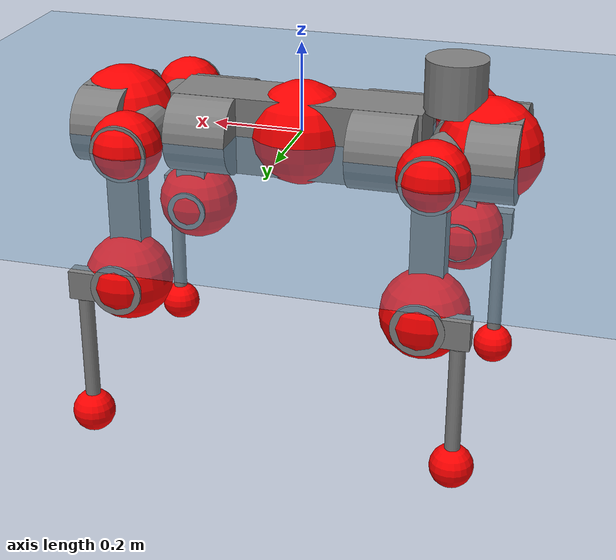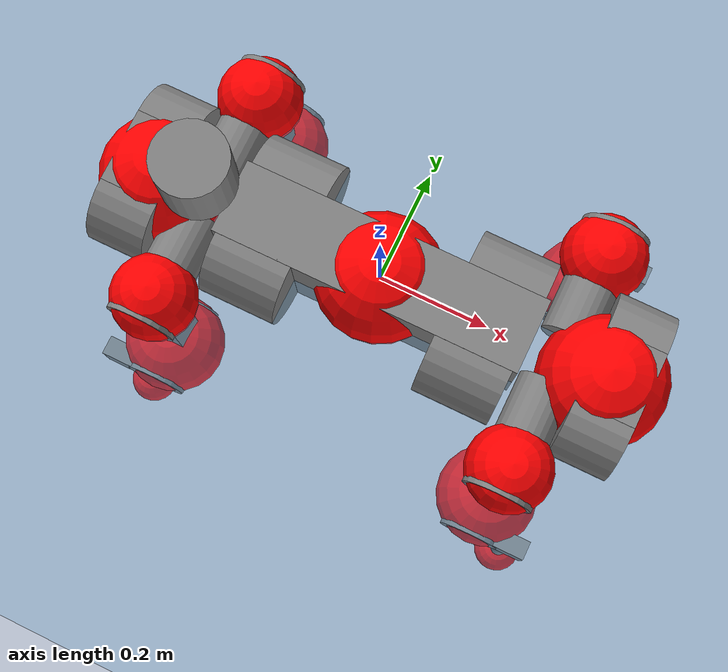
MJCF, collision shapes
<mujoco model="anymal_c">
  <compiler angle="radian" assetdir="assets" balanceinertia="true" inertiafromgeom="false"/>

  <option timestep="0.005" density="1.2" viscosity="2e-05"/>

  <size nkey="1"/>

  <visual>
    <quality shadowsize="8192"/>
    <map shadowclip="0.5"/>
  </visual>

  <default>
    <default class="/">
      <material specular="0" shininess="0.25"/>
      <geom contype="0" conaffinity="0" group="1" solref="-1000 -80"/>
      <site size="0.01 0.005 0.005" group="5"/>
      <general forcelimited="true" forcerange="-80 80" biastype="affine" gainprm="80" biasprm="0 -80 -2"/>
      <default class="anymal_c">
        <joint armature="0.01" damping="0.01" frictionloss="0.1"/>
        <default class="visual">
          <geom type="mesh" group="2"/>
          <default class="visual_zflip"/>
        </default>
        <default class="collision">
          <geom type="cylinder" group="3"/>
          <default class="foot">
            <geom size="0.03 0 0" type="sphere" condim="6" priority="1" friction="0.8 0.02 0.01" solimp="0.015 1 0.03"/>
          </default>
        </default>
      </default>
      <default class="reward_collision_sphere">
        <geom group="5" rgba="1 0 0 1"/>
      </default>
    </default>
  </default>

  <asset>
    <texture type="skybox" colorspace="auto" name="//unnamed_texture_0" builtin="gradient" rgb1="0.95 0.95 0.95" rgb2="0.95 0.95 0.95" width="100" height="600"/>
    <texture type="2d" colorspace="auto" name="texplane" builtin="checker" rgb1="0.345 0.575 0.748" rgb2="0.345 0.575 0.748" markrgb="1 1 1" width="512" height="512"/>
    <texture type="2d" colorspace="linear" name="base" file="base.png"/>
    <texture type="2d" colorspace="linear" name="top_shell" file="top_shell.png"/>
    <texture type="2d" colorspace="linear" name="bottom_shell" file="bottom_shell.png"/>
    <texture type="2d" colorspace="linear" name="remote" file="remote.png"/>
    <texture type="2d" colorspace="linear" name="hatch" file="hatch.png"/>
    <texture type="2d" colorspace="linear" name="handle" file="handle.png"/>
    <texture type="2d" colorspace="linear" name="face" file="face.png"/>
    <texture type="2d" colorspace="linear" name="battery" file="battery.png"/>
    <texture type="2d" colorspace="linear" name="lidar_cage" file="lidar_cage.png"/>
    <texture type="2d" colorspace="linear" name="depth_camera" file="depth_camera.png"/>
    <texture type="2d" colorspace="linear" name="wide_angle_camera" file="wide_angle_camera.png"/>
    <texture type="2d" colorspace="linear" name="lidar" file="lidar.png"/>
    <texture type="2d" colorspace="linear" name="drive" file="drive.png"/>
    <texture type="2d" colorspace="linear" name="hip_l" file="hip_l.png"/>
    <texture type="2d" colorspace="linear" name="shank_l" file="shank_l.png"/>
    <texture type="2d" colorspace="linear" name="foot" file="foot.png"/>
    <texture type="2d" colorspace="linear" name="thigh" file="thigh.png"/>
    <texture type="2d" colorspace="linear" name="shank_r" file="shank_r.png"/>
    <texture type="2d" colorspace="linear" name="hip_r" file="hip_r.png"/>
    <material name="MatPlane" class="/" texture="texplane" texuniform="true" texrepeat="2 2" specular="0.9" shininess="0.5"/>
    <material name="black_plastic" class="/" rgba="0.007 0.007 0.007 1"/>
    <material name="green" class="/" rgba="0.052 0.178 0.033 1"/>
    <material name="red" class="/" rgba="0.178 0.006 0.005 1"/>
    <material name="yellow" class="/" rgba="0.178 0.119 0.006 1"/>
    <material name="lwl" class="/" rgba="0.8 0.8 0.8 1"/>
    <material name="base" class="/" texture="base"/>
    <material name="top_shell" class="/" texture="top_shell"/>
    <material name="bottom_shell" class="/" texture="bottom_shell"/>
    <material name="hip_l" class="/" texture="hip_l"/>
    <material name="thigh" class="/" texture="thigh"/>
    <material name="shank_l" class="/" texture="shank_l"/>
    <material name="foot" class="/" texture="foot"/>
    <material name="hip_r" class="/" texture="hip_r"/>
    <material name="shank" class="/" texture="shank_r"/>
    <material name="hatch" class="/" texture="hatch"/>
    <material name="remote" class="/" texture="remote"/>
    <material name="handle" class="/" texture="handle"/>
    <material name="face" class="/" texture="face"/>
    <material name="depth_camera" class="/" texture="depth_camera"/>
    <material name="wide_angle_camera" class="/" texture="wide_angle_camera"/>
    <material name="battery" class="/" texture="battery"/>
    <material name="lidar_cage" class="/" texture="lidar_cage"/>
    <material name="lidar" class="/" texture="lidar"/>
    <material name="drive" class="/" texture="drive"/>
    <mesh name="base_0" class="/" file="base_0.obj"/>
    <mesh name="base_1" class="/" file="base_1.obj"/>
    <mesh name="base_2" class="/" file="base_2.obj"/>
    <mesh name="base_3" class="/" file="base_3.obj"/>
    <mesh name="base_4" class="/" file="base_4.obj"/>
    <mesh name="base_5" class="/" file="base_5.obj"/>
    <mesh name="top_shell" class="/" file="top_shell.obj"/>
    <mesh name="bottom_shell" class="/" file="bottom_shell.obj"/>
    <mesh name="remote" class="/" file="remote.obj"/>
    <mesh name="handle" class="/" file="handle.obj"/>
    <mesh name="face" class="/" file="face.obj"/>
    <mesh name="wide_angle_camera" class="/" file="wide_angle_camera.obj"/>
    <mesh name="depth_camera" class="/" file="depth_camera.obj"/>
    <mesh name="battery" class="/" file="battery.obj"/>
    <mesh name="lidar_cage" class="/" file="lidar_cage.obj"/>
    <mesh name="lidar" class="/" file="lidar.obj"/>
    <mesh name="drive" class="/" file="drive.obj"/>
    <mesh name="hip_l" class="/" file="hip_l.obj"/>
    <mesh name="thigh" class="/" file="thigh.obj"/>
    <mesh name="shank_l" class="/" file="shank_l.obj"/>
    <mesh name="foot" class="/" file="foot.obj"/>
    <mesh name="hip_r" class="/" file="hip_r.obj"/>
    <mesh name="hatch" class="/" file="hatch.obj"/>
    <mesh name="shank_r" class="/" file="shank_r.obj"/>
  </asset>

  <worldbody>
    <geom name="floor" class="/" size="100 100 0.125" type="plane" group="0" material="MatPlane"/>
    <light name="toplight_shadow" class="/" pos="0 0 5" dir="0.0990148 0.0990148 -0.990148" type="directional" ambient="0.04 0.04 0.04" diffuse="0.55 0.55 0.55" specular="0.12 0.12 0.12"/>
    <light name="toplight_fill" class="/" pos="0 0 5" dir="0.0990148 0.0990148 -0.990148" type="directional" castshadow="false" ambient="0.04 0.04 0.04" diffuse="0.3 0.3 0.3" specular="0.08 0.08 0.08"/>
    <body name="trunk" childclass="anymal_c" pos="-0.000141753 -2.45456e-05 -0.00182503" quat="1 8.64198e-05 0.000237054 -6.87063e-05">
      <inertial pos="0.00254991 0.00264987 0.0521981" quat="0.500153 0.500055 0.500061 0.49973" mass="16.4669" diaginertia="0.425551 0.42014 0.244438"/>
      <joint name="//unnamed_joint_0" type="free" armature="0" damping="0" frictionloss="0"/>
      <geom name="//unnamed_geom_1" class="visual" material="green" mesh="base_0"/>
      <geom name="//unnamed_geom_2" class="visual" material="yellow" mesh="base_1"/>
      <geom name="//unnamed_geom_3" class="visual" material="red" mesh="base_2"/>
      <geom name="//unnamed_geom_4" class="visual" material="black_plastic" mesh="base_3"/>
      <geom name="//unnamed_geom_5" class="visual" material="lwl" mesh="base_4"/>
      <geom name="//unnamed_geom_6" class="visual" material="base" mesh="base_5"/>
      <geom name="trunk_1" class="collision" size="0.277487 0.0669795 0.0861165" type="box"/>
      <geom name="trunk_2" class="collision" size="0.0861165 0.0693716" pos="0.199612 0.0647798 0" quat="0.707107 0 0.707107 0"/>
      <geom name="trunk_3" class="collision" size="0.0861165 0.0693716" pos="-0.199612 0.0647798 0" quat="0.707107 0 0.707107 0"/>
      <geom name="trunk_4" class="collision" size="0.0861165 0.0693716" pos="0.199612 -0.0647798 0" quat="0.707107 0 0.707107 0"/>
      <geom name="trunk_5" class="collision" size="0.0861165 0.0693716" pos="-0.199612 -0.0647798 0" quat="0.707107 0 0.707107 0"/>
      <geom name="//unnamed_geom_12" class="visual" material="top_shell" mesh="top_shell"/>
      <geom name="//unnamed_geom_13" class="visual" material="bottom_shell" mesh="bottom_shell"/>
      <geom name="//unnamed_geom_14" class="visual" material="remote" mesh="remote"/>
      <geom name="//unnamed_geom_15" class="visual" material="handle" mesh="handle"/>
      <geom name="//unnamed_geom_16" class="visual" pos="0.380409 0 0" quat="1 0 0 0" material="face" mesh="face"/>
      <geom name="trunk_6" class="collision" size="0.0526268 0.0669795 0.0861165" pos="0.430886 0 0" type="box"/>
      <geom name="//unnamed_geom_18" class="collision" size="0.0861165 0.0526268" pos="0.430886 0.0647798 0" quat="0.707107 0 0.707107 0"/>
      <geom name="//unnamed_geom_19" class="collision" size="0.0861165 0.0526268" pos="0.430886 -0.0647798 0" quat="0.707107 0 0.707107 0"/>
      <geom name="//unnamed_geom_20" class="visual" pos="0.423686 0 -0.0308323" quat="0.965926 0 0.258819 0" material="depth_camera" mesh="depth_camera"/>
      <geom name="//unnamed_geom_21" class="visual" pos="0.470808 0 0.0153797" material="wide_angle_camera" mesh="wide_angle_camera"/>
      <geom name="//unnamed_geom_22" class="visual_zflip" pos="-0.380409 0 0" quat="0 0 0 1" material="face" mesh="face"/>
      <geom name="trunk_7" class="collision" size="0.0526268 0.0669795 0.0861165" pos="-0.430886 0 0" quat="0 0 0 1" type="box"/>
      <geom name="//unnamed_geom_24" class="collision" size="0.0861165 0.0526268" pos="-0.430886 -0.0647798 0" quat="0 -0.707107 0 0.707107"/>
      <geom name="//unnamed_geom_25" class="collision" size="0.0861165 0.0526268" pos="-0.430886 0.0647798 0" quat="0 -0.707107 0 0.707107"/>
      <geom name="//unnamed_geom_26" class="visual" pos="-0.423686 0 -0.0308323" quat="0 -0.258819 0 0.965926" material="depth_camera" mesh="depth_camera"/>
      <geom name="//unnamed_geom_27" class="visual_zflip" pos="-0.470808 0 0.0153797" quat="0 0 0 1" material="wide_angle_camera" mesh="wide_angle_camera"/>
      <geom name="//unnamed_geom_28" class="visual" material="battery" mesh="battery"/>
      <geom name="//unnamed_geom_29" class="visual" pos="0 0.0708633 0.029012" quat="0.683013 -0.183013 0.183013 0.683013" material="depth_camera" mesh="depth_camera"/>
      <geom name="//unnamed_geom_30" class="visual" pos="0 -0.0708633 0.029012" quat="0.683013 0.183013 0.183013 -0.683013" material="depth_camera" mesh="depth_camera"/>
      <geom name="//unnamed_geom_31" class="visual" pos="-0.334063 0 0.0755117" quat="1 0 0 0" material="lidar_cage" mesh="lidar_cage"/>
      <geom name="trunk_8" class="collision" size="0.0669795 0.057411" pos="-0.334063 0 0.137154"/>
      <geom name="//unnamed_geom_33" class="visual" pos="-0.334063 3.0139e-06 0.146092" quat="0.707107 0 0 -0.707107" material="lidar" mesh="lidar"/>
      <geom name="//unnamed_geom_34" class="visual" pos="0.275235 0.0962805 -1.75853e-09" quat="0.258819 0.965926 0 0" material="drive" mesh="drive"/>
      <geom name="//unnamed_geom_35" class="visual" pos="0.275235 -0.0962805 1.75853e-09" quat="0.258819 -0.965926 0 0" material="drive" mesh="drive"/>
      <geom name="//unnamed_geom_36" class="visual" pos="-0.275235 0.0962805 1.75853e-09" quat="0 0 0.965926 -0.258819" material="drive" mesh="drive"/>
      <geom name="//unnamed_geom_37" class="visual" pos="-0.275235 -0.0962805 -1.75853e-09" quat="0 0 -0.965926 -0.258819" material="drive" mesh="drive"/>
      <geom name="//unnamed_geom_38" class="visual" pos="0.10646 0 0.074998" quat="1 0 0 0" material="hatch" mesh="hatch"/>
      <geom name="//unnamed_geom_39" class="reward_collision_sphere" size="0.114822"/>
      <geom name="//unnamed_geom_40" class="reward_collision_sphere" size="0.114822" pos="0.41299 0 0"/>
      <geom name="//unnamed_geom_41" class="reward_collision_sphere" size="0.114822" pos="-0.41299 0 0"/>
      <site name="imu" pos="0.224813 0.00400843 0.0449119" size="0.0095685"/>
      <camera name="track" pos="0 -1.85085 0" quat="0.707107 0.707107 0 0" mode="trackcom"/>
      <camera name="ego_camera" pos="0.41299 0 -0.0410948" quat="-0.5 -0.5 0.5 0.5"/>
      <body name="LF_HIP" pos="0.275405 0.0958413 -0.000406012" quat="0.258562 0.965995 -0.000130071 0.00047083">
        <inertial pos="0.0495441 -0.0142606 -0.0088793" quat="-0.128885 0.707695 -0.135245 0.68137" mass="2.49778" diaginertia="0.00386259 0.00335286 0.00385456"/>
        <joint name="LF_HAA" pos="0 0 0" axis="1 -0.000539376 0.000823921" range="-0.71621 0.492643" armature="0.0101555" damping="0.0134428" frictionloss="0.0840301"/>
        <geom name="//unnamed_geom_42" class="visual" pos="0 -0.000103447 1.6991e-05" quat="0.258819 -0.965926 0 0" material="hip_l" mesh="hip_l"/>
        <geom name="//unnamed_geom_43" class="visual" pos="0.0549735 -0.0667493 -0.0392918" quat="0.183013 -0.683013 0.683013 0.183013" material="drive" mesh="drive"/>
        <geom name="//unnamed_geom_44" class="collision" size="0.0478425 0.0669795" pos="0.0549735 -0.0110679 -0.00709399" quat="-0.353553 -0.612372 0.612372 -0.353553"/>
        <body name="LF_THIGH" pos="0.055219 -0.0668215 -0.0429187" quat="0.18307 -0.683005 0.683022 0.18295">
          <inertial pos="0.0280786 0.000363486 -0.253036" quat="0.993293 -0.00268502 -0.0793907 0.0840154" mass="2.56698" diaginertia="0.0196907 0.0201656 0.00447643"/>
          <joint name="LF_HFE" pos="0 0 0" axis="1 -0.000429742 -0.000279743" range="-3.17547 3.13589" armature="0.00918407" damping="0.00873183" frictionloss="0.0955296"/>
          <geom name="//unnamed_geom_45" class="visual" pos="-0.000152632 -2.40512e-07 0" quat="0.707107 0 0 -0.707107" material="thigh" mesh="thigh"/>
          <geom name="//unnamed_geom_46" class="collision" size="0.0621953 0.038274" pos="0.0367102 0 0" quat="0.5 0.5 -0.5 -0.5"/>
          <geom name="//unnamed_geom_47" class="collision" size="0.0358819 0.0287055 0.135216" pos="0.0275326 0 -0.145182" quat="0.707107 0 0 -0.707107" type="box"/>
          <geom name="//unnamed_geom_48" class="visual" pos="0.0920508 0 -0.2928" quat="1 0 0 0" material="drive" mesh="drive"/>
          <geom name="//unnamed_geom_49" class="collision" size="0.0478425 0.0669795" pos="0.027808 0 -0.2928" quat="0.707107 0 0.707107 0"/>
          <geom name="//unnamed_geom_50" class="reward_collision_sphere" size="0.076548" pos="0.0229439 0 0"/>
          <body name="LF_SHANK" pos="0.0925615 0.0010865 -0.29136" quat="0.999999 -0.000900314 0.00101339 0.000349172">
            <inertial pos="0.00462548 -0.0566112 -0.0827867" quat="0.992953 -0.115617 -0.000604256 -0.0260212" mass="0.506182" diaginertia="0.00662119 0.00612358 0.00125433"/>
            <joint name="LF_KFE" pos="0 0 0" axis="0.999986 -0.00162504 -0.00505981" range="-3.14809 3.1566" armature="0.0096669" damping="0.0215118" frictionloss="0.0868618"/>
            <geom name="//unnamed_geom_51" class="visual" pos="-4.97698e-05 -0.000265375 0" quat="0.707107 0 0 -0.707107" material="shank_l" mesh="shank_l"/>
            <geom name="LF_kfe_act" class="collision" size="0.057411 0.019137" pos="0.0183551 0 0" quat="0.5 0.5 -0.5 -0.5"/>
            <geom name="//unnamed_geom_53" class="collision" size="0.0550179 0.0322937 0.0181802" pos="0.0183551 -0.0532111 0" quat="0.5 0.5 -0.5 -0.5" type="box"/>
            <geom name="//unnamed_geom_54" class="visual" pos="0.0119767 -0.0814768 -0.34722" quat="0.382683 0 0 -0.92388" material="foot" mesh="foot"/>
            <geom name="LF_calf" class="collision" size="0.0167449 0.135157" pos="0.0119767 -0.0813912 -0.17361" quat="0.707107 0 0 -0.707107"/>
            <geom name="LF_foot" class="foot" size="0.0312623" pos="0.0119767 -0.0813912 -0.324104" quat="0.707107 0 0 -0.707107"/>
            <geom name="//unnamed_geom_57" class="reward_collision_sphere" size="0.095685" pos="-0.0458877 0 0"/>
            <geom name="//unnamed_geom_58" class="reward_collision_sphere" size="0.0478425" pos="0.0119767 -0.0813912 -0.324104"/>
            <site name="LF_foot" class="foot" pos="0.0119767 -0.0813912 -0.324104" quat="0.707107 0 0 -0.707107" size="0.0095685"/>
          </body>
        </body>
      </body>
      <body name="RF_HIP" pos="0.275254 -0.0977215 0.00105984" quat="0.257826 -0.966191 0.00033105 2.81994e-05">
        <inertial pos="0.0524474 0.0137275 -0.00770747" quat="0.135922 0.679974 0.128103 0.709048" mass="2.32837" diaginertia="0.0036728 0.00321548 0.00376241"/>
        <joint name="RF_HAA" pos="0 0 0" axis="0.999998 -0.000127178 -0.00197703" range="-0.450545 0.66843" armature="0.00948397" damping="0.00435114" frictionloss="0.0891305"/>
        <geom name="//unnamed_geom_59" class="visual" pos="0 0.000103446 1.6991e-05" quat="0.258819 0.965926 0 0" material="hip_r" mesh="hip_r"/>
        <geom name="//unnamed_geom_60" class="visual" pos="0.0549735 0.0667493 -0.0392918" quat="0.183013 0.683013 0.683013 -0.183013" material="drive" mesh="drive"/>
        <geom name="//unnamed_geom_61" class="collision" size="0.0478425 0.0669795" pos="0.0549735 0.0110679 -0.00709399" quat="-0.353553 0.612372 0.612372 0.353553"/>
        <body name="RF_THIGH" pos="0.0579027 0.0678735 -0.0427544" quat="0.182804 0.683017 0.683033 -0.183129">
          <inertial pos="0.0288552 0.000516357 -0.252268" quat="0.992899 -0.00540027 -0.0809056 0.0870387" mass="2.76653" diaginertia="0.0196666 0.0209931 0.0048883"/>
          <joint name="RF_HFE" pos="0 0 0" axis="0.999919 -0.0126896 0.000394435" stiffness="0.00675543" range="-3.08979 3.0854" armature="0.00975167" damping="0" frictionloss="0.100812"/>
          <geom name="//unnamed_geom_62" class="visual" pos="-0.000152632 -2.40512e-07 0" quat="0.707107 0 0 -0.707107" material="thigh" mesh="thigh"/>
          <geom name="//unnamed_geom_63" class="collision" size="0.0621953 0.038274" pos="0.0367102 0 0" quat="0.5 0.5 0.5 0.5"/>
          <geom name="//unnamed_geom_64" class="collision" size="0.0358819 0.0287055 0.135216" pos="0.0275326 0 -0.145182" quat="0.707107 0 0 0.707107" type="box"/>
          <geom name="//unnamed_geom_65" class="visual" pos="0.0920508 0 -0.2928" quat="1 0 0 0" material="drive" mesh="drive"/>
          <geom name="//unnamed_geom_66" class="collision" size="0.0478425 0.0669795" pos="0.027808 0 -0.2928" quat="0.707107 0 0.707107 0"/>
          <geom name="//unnamed_geom_67" class="reward_collision_sphere" size="0.076548" pos="0.0229439 0 0"/>
          <body name="RF_SHANK" pos="0.0946604 -0.00120628 -0.29215" quat="1 -1.83459e-05 0.000296148 0.000380807">
            <inertial pos="0.00580782 0.0577788 -0.0800267" quat="0.992719 0.117209 -0.0053794 0.0272611" mass="0.496798" diaginertia="0.00667522 0.00620875 0.00126883"/>
            <joint name="RF_KFE" pos="0 0 0" axis="0.999911 -0.00474502 0.012466" range="-3.15313 3.08787" armature="0.00960214" damping="0.00592004" frictionloss="0.0830965"/>
            <geom name="//unnamed_geom_68" class="visual" pos="-4.97696e-05 0.000265375 0" quat="0.707107 0 0 0.707107" material="shank" mesh="shank_r"/>
            <geom name="RF_kfe_act" class="collision" size="0.057411 0.019137" pos="0.0183551 0 0" quat="0.5 0.5 0.5 0.5"/>
            <geom name="//unnamed_geom_70" class="collision" size="0.0550179 0.0322937 0.0181802" pos="0.0183551 0.0532111 0" quat="0.5 0.5 0.5 0.5" type="box"/>
            <geom name="//unnamed_geom_71" class="visual" pos="0.0119767 0.0814768 -0.34722" quat="0.382683 0 0 0.92388" material="foot" mesh="foot"/>
            <geom name="RF_calf" class="collision" size="0.0167449 0.135157" pos="0.0119767 0.0813912 -0.17361" quat="0.707107 0 0 0.707107"/>
            <geom name="RF_foot" class="foot" size="0.0285198" pos="0.0119767 0.0813912 -0.324104" quat="0.707107 0 0 0.707107"/>
            <geom name="//unnamed_geom_74" class="reward_collision_sphere" size="0.095685" pos="-0.0458877 0 0"/>
            <geom name="//unnamed_geom_75" class="reward_collision_sphere" size="0.0478425" pos="0.0119767 0.0813912 -0.324104"/>
            <site name="RF_foot" class="foot" pos="0.0119767 0.0813912 -0.324104" quat="0.707107 0 0 0.707107" size="0.0095685"/>
          </body>
        </body>
      </body>
      <body name="LH_HIP" pos="-0.273727 0.0982949 0.00058774" quat="-2.16572e-05 -0.0001474 0.965906 -0.258893">
        <inertial pos="0.0518256 0.0114262 -0.00934605" quat="0.136346 0.676822 0.116196 0.714017" mass="2.35471" diaginertia="0.00377529 0.00339743 0.00376359"/>
        <joint name="LH_HAA" pos="0 0 0" axis="0.99997 -0.00771722 -4.25277e-05" range="-0.514785 0.719227" armature="0.00963527" damping="0.00217989" frictionloss="0.0981638"/>
        <geom name="//unnamed_geom_76" class="visual" pos="0 0.000103446 1.6991e-05" quat="-0.258819 -0.965926 0 0" material="hip_r" mesh="hip_r"/>
        <geom name="//unnamed_geom_77" class="visual" pos="0.0549735 0.0667493 -0.0392918" quat="0.183013 0.683013 0.683013 -0.183013" material="drive" mesh="drive"/>
        <geom name="//unnamed_geom_78" class="collision" size="0.0478425 0.0669795" pos="0.0549735 0.0110679 -0.00709399" quat="-0.353553 0.612372 0.612372 0.353553"/>
        <body name="LH_THIGH" pos="0.054456 0.06444 -0.0432016" quat="0.183037 0.683116 0.683063 -0.182412">
          <inertial pos="0.0291128 -0.00190359 -0.252318" quat="0.992584 -0.00659782 -0.0819776 0.0895123" mass="2.69891" diaginertia="0.020581 0.0207628 0.00496869"/>
          <joint name="LH_HFE" pos="0 0 0" axis="0.999993 0.000874322 0.00367727" range="-3.14664 3.13289" armature="0.00940435" damping="0.0120371" frictionloss="0.0965284"/>
          <geom name="//unnamed_geom_79" class="visual" pos="-0.000152632 -2.40512e-07 0" quat="0.707107 0 0 -0.707107" material="thigh" mesh="thigh"/>
          <geom name="//unnamed_geom_80" class="collision" size="0.0621953 0.038274" pos="0.0367102 0 0" quat="0.5 0.5 -0.5 -0.5"/>
          <geom name="//unnamed_geom_81" class="collision" size="0.0358819 0.0287055 0.135216" pos="0.0275326 0 -0.145182" quat="0.707107 0 0 -0.707107" type="box"/>
          <geom name="//unnamed_geom_82" class="visual" pos="0.0920508 0 -0.2928" quat="1 0 0 0" material="drive" mesh="drive"/>
          <geom name="//unnamed_geom_83" class="collision" size="0.0478425 0.0669795" pos="0.027808 0 -0.2928" quat="0.707107 0 0.707107 0"/>
          <geom name="//unnamed_geom_84" class="reward_collision_sphere" size="0.076548" pos="0.0229439 0 0"/>
          <body name="LH_SHANK" pos="0.0939619 -0.000563093 -0.292615" quat="0.999999 0.000194782 -0.00101068 6.87331e-05">
            <inertial pos="0.00719475 0.0572929 -0.0844861" quat="0.992924 0.116017 -0.00118953 0.0252936" mass="0.514528" diaginertia="0.00690223 0.00668448 0.00136373"/>
            <joint name="LH_KFE" pos="0 0 0" axis="0.999999 0.00107687 0.000307111" range="-3.14709 3.08977" armature="0.00956537" damping="0.0193427" frictionloss="0.0970207"/>
            <geom name="//unnamed_geom_85" class="visual" pos="-4.97696e-05 0.000265375 0" quat="-0.707107 0 0 -0.707107" material="shank" mesh="shank_r"/>
            <geom name="LH_kfe_act" class="collision" size="0.057411 0.019137" pos="0.0183551 0 0" quat="0.5 0.5 -0.5 -0.5"/>
            <geom name="//unnamed_geom_87" class="collision" size="0.0550179 0.0322937 0.0181802" pos="0.0183551 0.0532111 0" quat="0.5 0.5 -0.5 -0.5" type="box"/>
            <geom name="//unnamed_geom_88" class="visual" pos="0.0119767 0.0814768 -0.34722" quat="-0.382683 0 0 -0.92388" material="foot" mesh="foot"/>
            <geom name="LH_calf" class="collision" size="0.0167449 0.135157" pos="0.0119767 0.0813912 -0.17361" quat="0.707107 0 0 -0.707107"/>
            <geom name="LH_foot" class="foot" size="0.0269503" pos="0.0119767 0.0813912 -0.324104" quat="0.707107 0 0 -0.707107"/>
            <geom name="//unnamed_geom_91" class="reward_collision_sphere" size="0.095685" pos="-0.0458877 0 0"/>
            <geom name="//unnamed_geom_92" class="reward_collision_sphere" size="0.0478425" pos="0.0119767 0.0813912 -0.324104"/>
            <site name="LH_foot" class="foot" pos="0.0119767 0.0813912 -0.324104" quat="0.707107 0 0 -0.707107" size="0.0095685"/>
          </body>
        </body>
      </body>
      <body name="RH_HIP" pos="-0.275082 -0.0942275 -0.00140785" quat="0.000265502 -0.000916533 -0.966197 -0.257802">
        <inertial pos="0.0509588 -0.0139814 -0.00879915" quat="-0.130794 0.700921 -0.140916 0.686837" mass="2.42191" diaginertia="0.00380161 0.00326251 0.00368718"/>
        <joint name="RH_HAA" pos="0 0 0" axis="0.999998 -0.00173221 0.000178997" range="-0.773999 0.471228" armature="0.00822418" damping="0.0144394" frictionloss="0.101831"/>
        <geom name="//unnamed_geom_93" class="visual" pos="0 -0.000103447 1.6991e-05" quat="-0.258819 0.965926 0 0" material="hip_l" mesh="hip_l"/>
        <geom name="//unnamed_geom_94" class="visual" pos="0.0549735 -0.0667493 -0.0392918" quat="-0.183013 0.683013 -0.683013 -0.183013" material="drive" mesh="drive"/>
        <geom name="//unnamed_geom_95" class="collision" size="0.0478425 0.0669795" pos="0.0549735 -0.0110679 -0.00709399" quat="0.353553 0.612372 -0.612372 0.353553"/>
        <body name="RH_THIGH" pos="0.0553911 -0.0668999 -0.0454621" quat="-0.18298 0.683006 -0.683026 -0.183022">
          <inertial pos="0.0285698 0.00257288 -0.25128" quat="0.994269 0.000146048 -0.073279 0.0778376" mass="2.60745" diaginertia="0.0189356 0.0195332 0.00463158"/>
          <joint name="RH_HFE" pos="0 0 0" axis="0.999968 0.0077133 0.00222308" stiffness="0.00576697" range="-3.14467 3.0896" armature="0.0109529" damping="0.00869003" frictionloss="0.0914903"/>
          <geom name="//unnamed_geom_96" class="visual" pos="-0.000152632 -2.40512e-07 0" quat="0.707107 0 0 -0.707107" material="thigh" mesh="thigh"/>
          <geom name="//unnamed_geom_97" class="collision" size="0.0621953 0.038274" pos="0.0367102 0 0" quat="0.5 0.5 0.5 0.5"/>
          <geom name="//unnamed_geom_98" class="collision" size="0.0358819 0.0287055 0.135216" pos="0.0275326 0 -0.145182" quat="0.707107 0 0 0.707107" type="box"/>
          <geom name="//unnamed_geom_99" class="visual" pos="0.0920508 0 -0.2928" quat="1 0 0 0" material="drive" mesh="drive"/>
          <geom name="//unnamed_geom_100" class="collision" size="0.0478425 0.0669795" pos="0.027808 0 -0.2928" quat="0.707107 0 0.707107 0"/>
          <geom name="//unnamed_geom_101" class="reward_collision_sphere" size="0.076548" pos="0.0229439 0 0"/>
          <body name="RH_SHANK" pos="0.0903937 -0.00166837 -0.293788" quat="0.999999 0.000969352 -0.000371742 8.35137e-05">
            <inertial pos="0.00553982 -0.056485 -0.0827723" quat="0.993314 -0.114121 -0.0092034 -0.0147942" mass="0.495807" diaginertia="0.00650549 0.00630979 0.0013158"/>
            <joint name="RH_KFE" pos="0 0 0" axis="0.999962 0.00539248 0.00687837" stiffness="0.00931034" range="-3.07923 3.18737" armature="0.00933607" damping="0.00719847" frictionloss="0.0926115"/>
            <geom name="//unnamed_geom_102" class="visual" pos="-4.97698e-05 -0.000265375 0" quat="0.707107 0 0 -0.707107" material="shank_l" mesh="shank_l"/>
            <geom name="RH_kfe_act" class="collision" size="0.057411 0.019137" pos="0.0183551 0 0" quat="0.5 0.5 0.5 0.5"/>
            <geom name="//unnamed_geom_104" class="collision" size="0.0550179 0.0322937 0.0181802" pos="0.0183551 -0.0532111 0" quat="0.5 0.5 0.5 0.5" type="box"/>
            <geom name="//unnamed_geom_105" class="visual" pos="0.0119767 -0.0814768 -0.34722" quat="0.382683 0 0 -0.92388" material="foot" mesh="foot"/>
            <geom name="RH_calf" class="collision" size="0.0167449 0.135157" pos="0.0119767 -0.0813912 -0.17361" quat="0.707107 0 0 0.707107"/>
            <geom name="RH_foot" class="foot" size="0.025081" pos="0.0119767 -0.0813912 -0.324104" quat="0.707107 0 0 0.707107"/>
            <geom name="//unnamed_geom_108" class="reward_collision_sphere" size="0.095685" pos="-0.0458877 0 0"/>
            <geom name="//unnamed_geom_109" class="reward_collision_sphere" size="0.0478425" pos="0.0119767 -0.0813912 -0.324104"/>
            <site name="RH_foot" class="foot" pos="0.0119767 -0.0813912 -0.324104" quat="0.707107 0 0 0.707107" size="0.0095685"/>
          </body>
        </body>
      </body>
    </body>
  </worldbody>

  <contact>
    <pair class="/" geom1="floor" geom2="LF_foot" name="//unnamed_contact_0"/>
    <pair class="/" geom1="floor" geom2="RF_foot" name="//unnamed_contact_1"/>
    <pair class="/" geom1="floor" geom2="LH_foot" name="//unnamed_contact_2"/>
    <pair class="/" geom1="floor" geom2="RH_foot" name="//unnamed_contact_3"/>
  </contact>

  <actuator>
    <general name="LF_HAA" class="/" joint="LF_HAA" forcerange="-75.5884 75.5884" gainprm="82.439" biasprm="0 -82.439 -1.9609"/>
    <general name="LF_HFE" class="/" joint="LF_HFE" forcerange="-69.0443 69.0443" gainprm="82.439" biasprm="0 -82.439 -1.9609"/>
    <general name="LF_KFE" class="/" joint="LF_KFE" forcerange="-73.9392 73.9392" gainprm="82.439" biasprm="0 -82.439 -1.9609"/>
    <general name="RF_HAA" class="/" joint="RF_HAA" forcerange="-80.1392 80.1392" gainprm="82.439" biasprm="0 -82.439 -1.9609"/>
    <general name="RF_HFE" class="/" joint="RF_HFE" forcerange="-77.1527 77.1527" gainprm="82.439" biasprm="0 -82.439 -1.9609"/>
    <general name="RF_KFE" class="/" joint="RF_KFE" forcerange="-76.6772 76.6772" gainprm="82.439" biasprm="0 -82.439 -1.9609"/>
    <general name="LH_HAA" class="/" joint="LH_HAA" forcerange="-81.5839 81.5839" gainprm="82.439" biasprm="0 -82.439 -1.9609"/>
    <general name="LH_HFE" class="/" joint="LH_HFE" forcerange="-77.4359 77.4359" gainprm="82.439" biasprm="0 -82.439 -1.9609"/>
    <general name="LH_KFE" class="/" joint="LH_KFE" forcerange="-76.5902 76.5902" gainprm="82.439" biasprm="0 -82.439 -1.9609"/>
    <general name="RH_HAA" class="/" joint="RH_HAA" forcerange="-69.2267 69.2267" gainprm="82.439" biasprm="0 -82.439 -1.9609"/>
    <general name="RH_HFE" class="/" joint="RH_HFE" forcerange="-79.0385 79.0385" gainprm="82.439" biasprm="0 -82.439 -1.9609"/>
    <general name="RH_KFE" class="/" joint="RH_KFE" forcerange="-79.6055 79.6055" gainprm="82.439" biasprm="0 -82.439 -1.9609"/>
  </actuator>

  <sensor>
    <gyro site="imu" name="imu_angular_velocity"/>
    <velocimeter site="imu" name="imu_linear_velocity"/>
    <framelinvel objtype="site" objname="LF_foot" name="LF_foot_global_linear_velocity"/>
    <framelinvel objtype="site" objname="RF_foot" name="RF_foot_global_linear_velocity"/>
    <framelinvel objtype="site" objname="LH_foot" name="LH_foot_global_linear_velocity"/>
    <framelinvel objtype="site" objname="RH_foot" name="RH_foot_global_linear_velocity"/>
  </sensor>

  <keyframe>
    <key name="home" qpos="0 0 0.55 1 0 0 0 0 0.4 -0.8 0 -0.4 0.8 0 -0.4 0.8 0 0.4 -0.8"/>
  </keyframe>
</mujoco>
